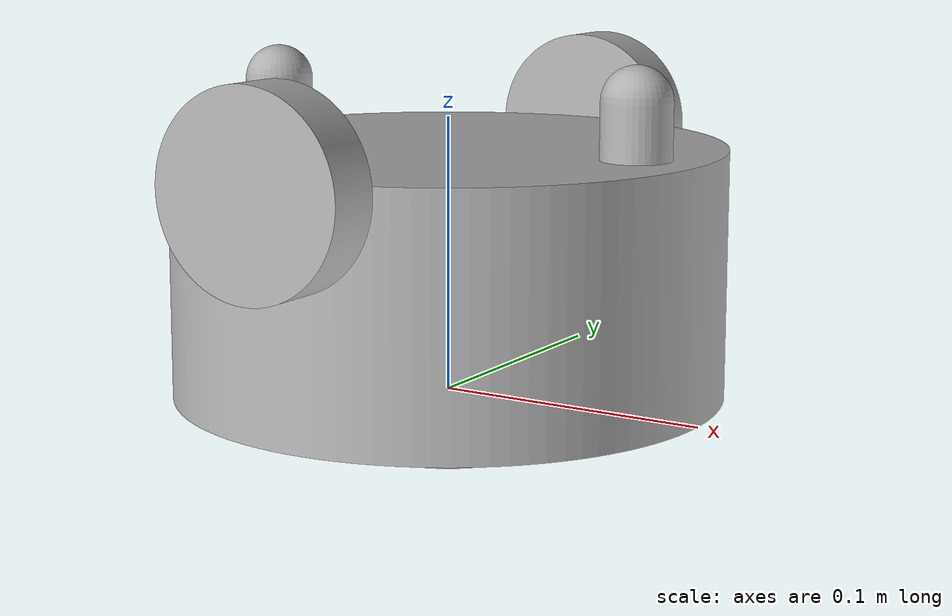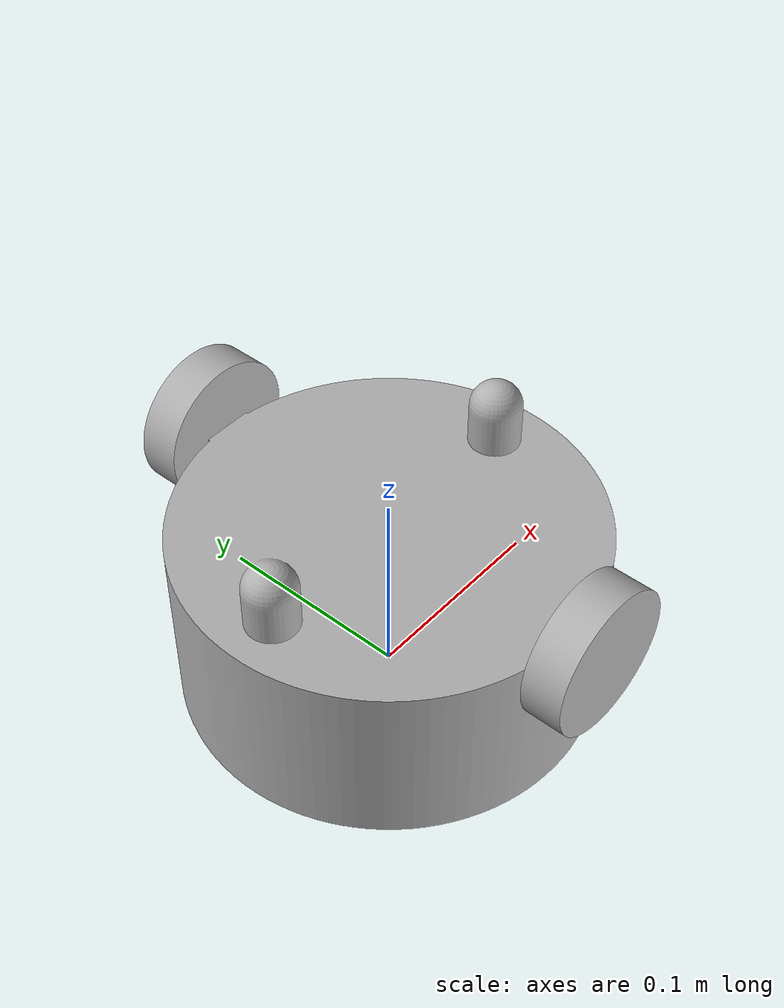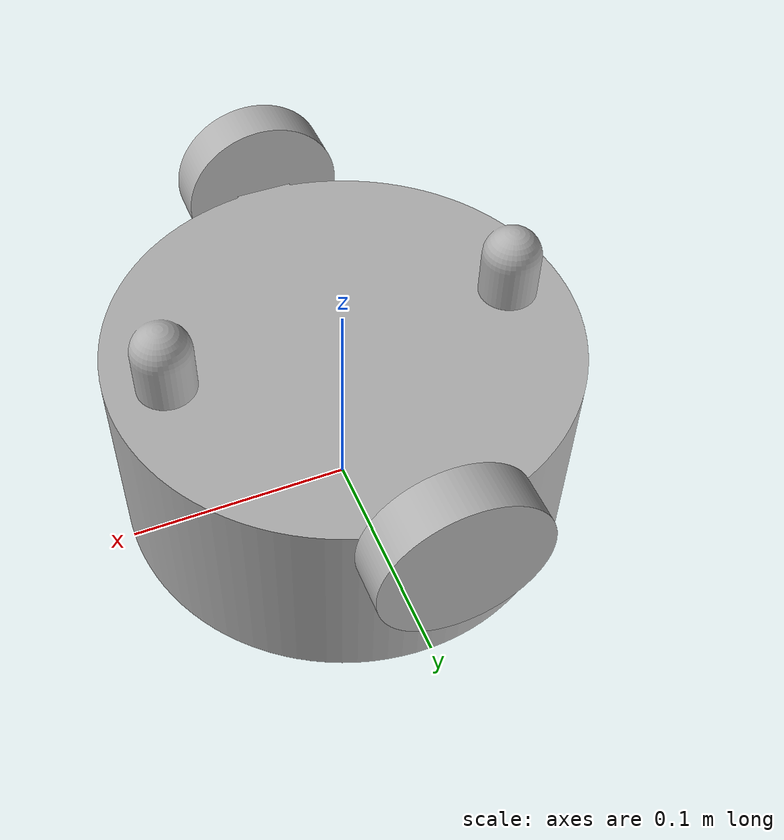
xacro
<?xml version="1.0" ?>
<robot name="simulation_model" xmlns:xacro="http://www.ros.org/wiki/xacro">

<xacro:include filename="$(find simulation_model_description)/urdf/materials.xacro" />
<xacro:include filename="$(find simulation_model_description)/urdf/simulation_model.trans" />
<xacro:include filename="$(find simulation_model_description)/urdf/simulation_model.gazebo" />
<link name="base_link">
  <inertial>
    <origin xyz="6.249723194036871e-14 0.0 0.04523421510112279" rpy="0 0 0"/>
    <mass value="6.325008147531072"/>
    <inertia ixx="0.020089" iyy="0.020431" izz="0.031467" ixy="0.0" iyz="-0.0" ixz="0.0"/>
  </inertial>
  <visual>
    <origin xyz="0 0 0" rpy="0 0 0"/>
    <geometry>
      <mesh filename="package://simulation_model_description/meshes/base_link.stl" scale="0.001 0.001 0.001"/>
    </geometry>
    <material name="silver"/>
  </visual>
  <collision>
    <origin xyz="0 0 0" rpy="0 0 0"/>
    <geometry>
      <mesh filename="package://simulation_model_description/meshes/base_link.stl" scale="0.001 0.001 0.001"/>
    </geometry>
  </collision>
</link>

<link name="left_wheel_1">
  <inertial>
    <origin xyz="3.4784450002008618e-15 0.009999674164923214 -1.3877787807814457e-17" rpy="0 0 0"/>
    <mass value="0.07158118861204343"/>
    <inertia ixx="2.4e-05" iyy="4.4e-05" izz="2.4e-05" ixy="-0.0" iyz="-0.0" ixz="-0.0"/>
  </inertial>
  <visual>
    <origin xyz="-0.0 -0.100216 -0.0875" rpy="0 0 0"/>
    <geometry>
      <mesh filename="package://simulation_model_description/meshes/left_wheel_1.stl" scale="0.001 0.001 0.001"/>
    </geometry>
    <material name="silver"/>
  </visual>
  <collision>
    <origin xyz="-0.0 -0.100216 -0.0875" rpy="0 0 0"/>
    <geometry>
      <mesh filename="package://simulation_model_description/meshes/left_wheel_1.stl" scale="0.001 0.001 0.001"/>
    </geometry>
  </collision>
</link>

<link name="right_wheel_1">
  <inertial>
    <origin xyz="3.4784450002008618e-15 -0.009999674164923228 -1.3877787807814457e-17" rpy="0 0 0"/>
    <mass value="0.07158118861204343"/>
    <inertia ixx="2.4e-05" iyy="4.4e-05" izz="2.4e-05" ixy="-0.0" iyz="0.0" ixz="-0.0"/>
  </inertial>
  <visual>
    <origin xyz="-0.0 0.100216 -0.0875" rpy="0 0 0"/>
    <geometry>
      <mesh filename="package://simulation_model_description/meshes/right_wheel_1.stl" scale="0.001 0.001 0.001"/>
    </geometry>
    <material name="silver"/>
  </visual>
  <collision>
    <origin xyz="-0.0 0.100216 -0.0875" rpy="0 0 0"/>
    <geometry>
      <mesh filename="package://simulation_model_description/meshes/right_wheel_1.stl" scale="0.001 0.001 0.001"/>
    </geometry>
  </collision>
</link>

<link name="lidar_link_1">
  <inertial>
    <origin xyz="7.385233546074017e-18 0.0 -0.005000000000000003" rpy="0 0 0"/>
    <mass value="0.30210340355082843"/>
    <inertia ixx="9.5e-05" iyy="9.5e-05" izz="0.000185" ixy="0.0" iyz="0.0" ixz="-0.0"/>
  </inertial>
  <visual>
    <origin xyz="-0.0 -0.0 0.01" rpy="0 0 0"/>
    <geometry>
      <mesh filename="package://simulation_model_description/meshes/lidar_link_1.stl" scale="0.001 0.001 0.001"/>
    </geometry>
    <material name="silver"/>
  </visual>
  <collision>
    <origin xyz="-0.0 -0.0 0.01" rpy="0 0 0"/>
    <geometry>
      <mesh filename="package://simulation_model_description/meshes/lidar_link_1.stl" scale="0.001 0.001 0.001"/>
    </geometry>
  </collision>
</link>

<joint name="Revolute 5" type="continuous">
  <origin xyz="0.0 0.100216 0.0875" rpy="0 0 0"/>
  <parent link="base_link"/>
  <child link="left_wheel_1"/>
  <axis xyz="0.0 1.0 0.0"/>
</joint>

<joint name="Revolute 6" type="continuous">
  <origin xyz="0.0 -0.100216 0.0875" rpy="0 0 0"/>
  <parent link="base_link"/>
  <child link="right_wheel_1"/>
  <axis xyz="0.0 -1.0 0.0"/>
</joint>

<joint name="Rigid 7" type="fixed">
  <origin xyz="0.0 0.0 -0.01" rpy="0 0 0"/>
  <parent link="base_link"/>
  <child link="lidar_link_1"/>
</joint>

</robot>

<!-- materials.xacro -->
<robot name="simulation_model" xmlns:xacro="http://www.ros.org/wiki/xacro" >

<material name="silver">
  <color rgba="0.700 0.700 0.700 1.000"/>
</material>

</robot>

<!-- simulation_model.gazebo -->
<robot name="simulation_model" xmlns:xacro="http://www.ros.org/wiki/xacro" >

<xacro:property name="body_color" value="Gazebo/Silver" />

<gazebo>
  <plugin name="control" filename="libgazebo_ros_control.so"/>
</gazebo>
<gazebo reference="base_link">
  <material>${body_color}</material>
  <mu1>0.2</mu1>
  <mu2>0.2</mu2>
  <selfCollide>true</selfCollide>
  <gravity>true</gravity>
</gazebo>

<gazebo reference="left_wheel_1">
  <material>${body_color}</material>
  <mu1>0.2</mu1>
  <mu2>0.2</mu2>
  <selfCollide>true</selfCollide>
</gazebo>

<gazebo reference="right_wheel_1">
  <material>${body_color}</material>
  <mu1>0.2</mu1>
  <mu2>0.2</mu2>
  <selfCollide>true</selfCollide>
</gazebo>

<gazebo reference="lidar_link_1">
  <material>${body_color}</material>
  <mu1>0.2</mu1>
  <mu2>0.2</mu2>
  <selfCollide>true</selfCollide>
</gazebo>

</robot>
